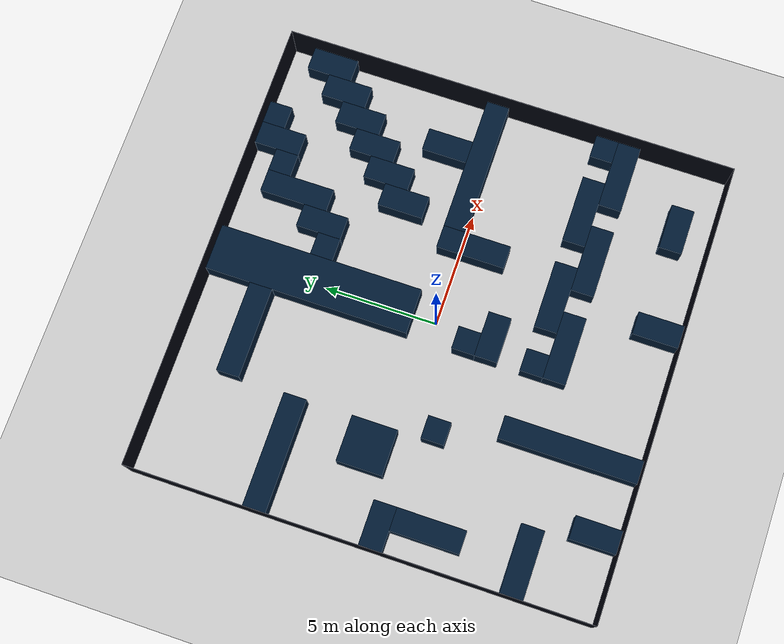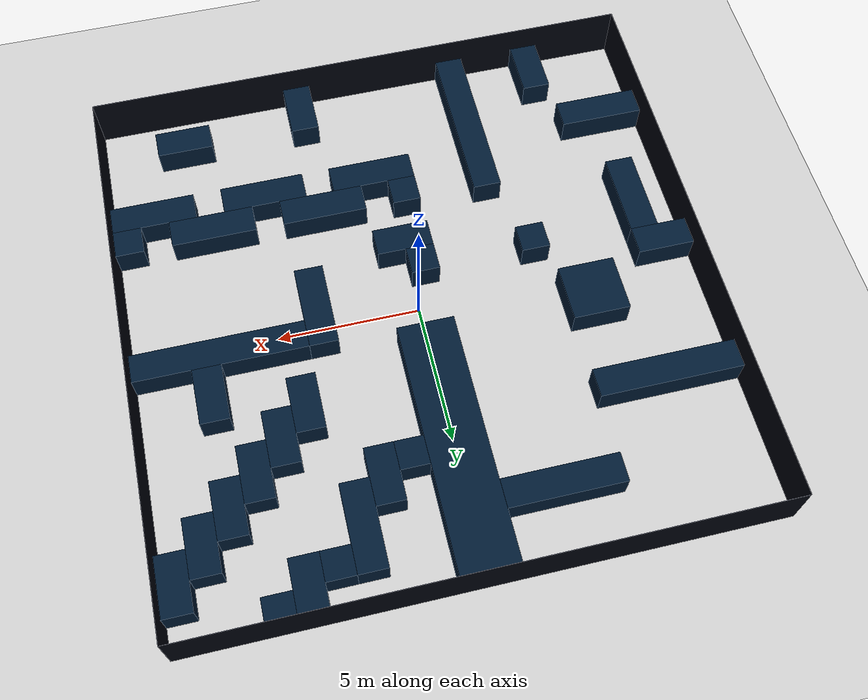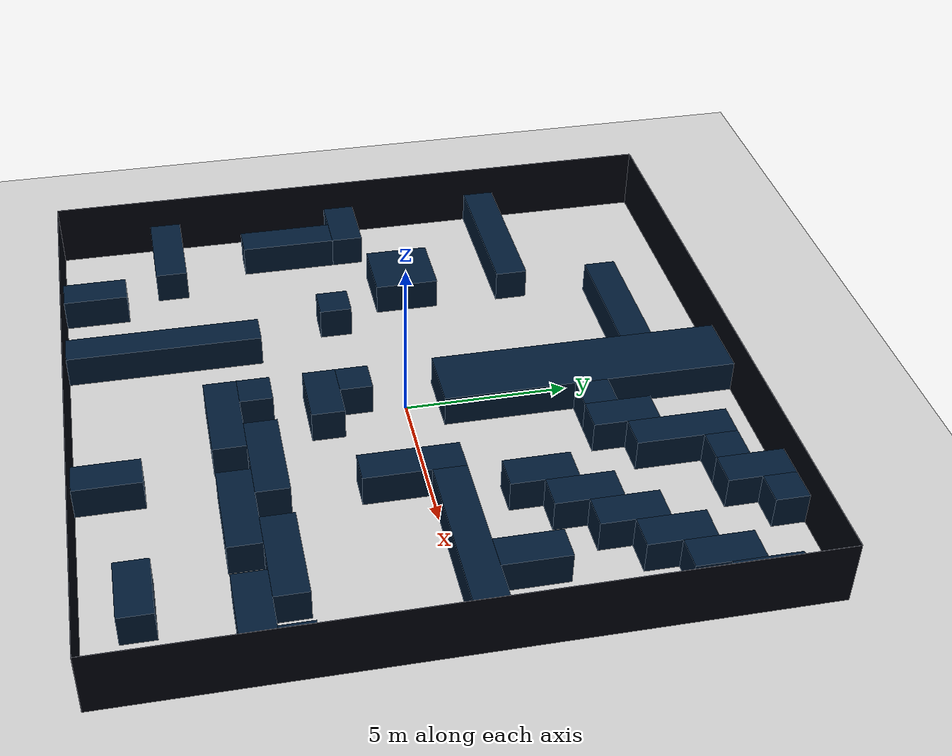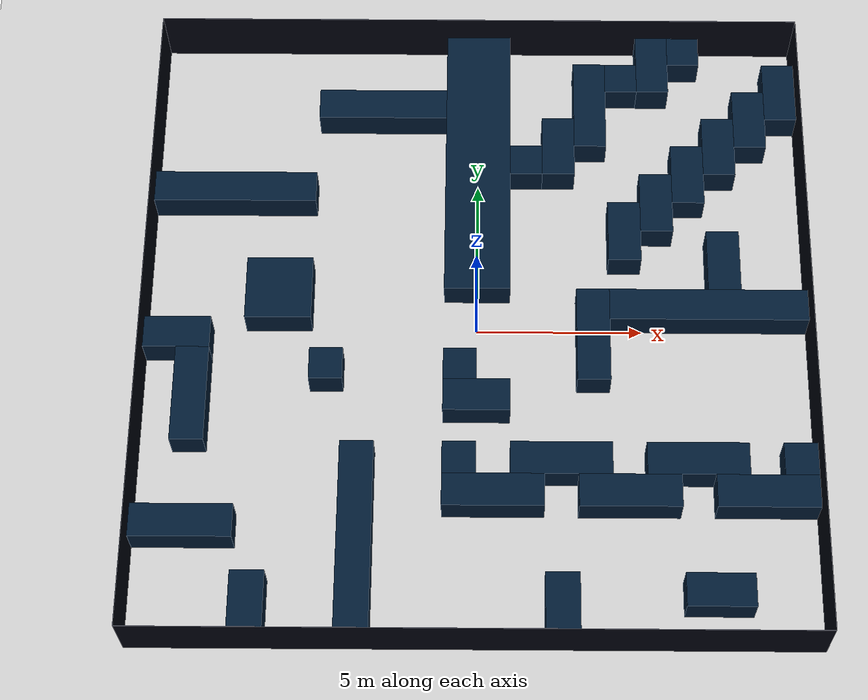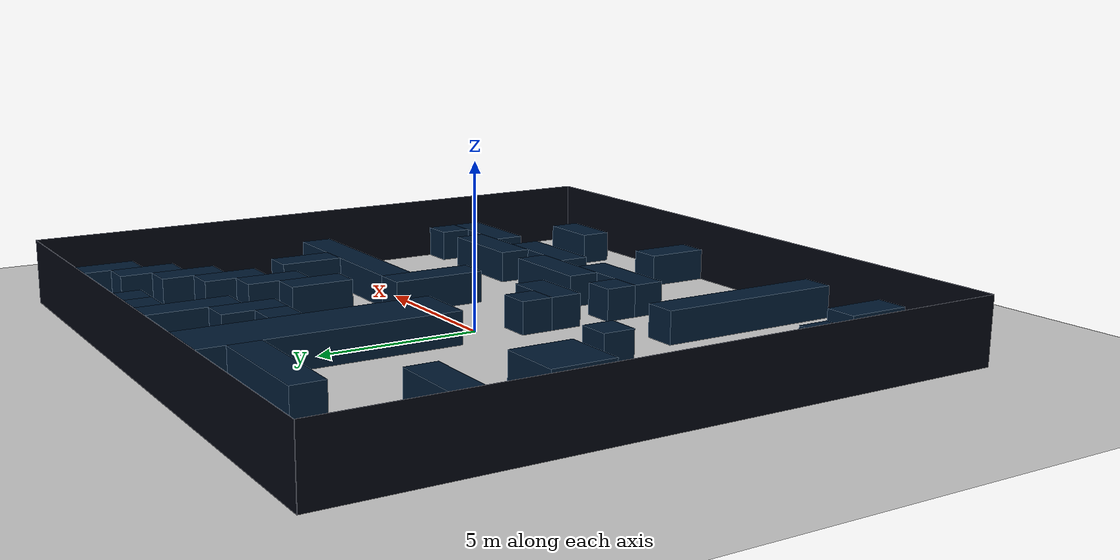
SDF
<sdf version="1.8">
 <world name="maze">
  <model name="ground_plane">
   <static>true</static>
   <link name="link">
    <collision name="collision"><geometry><plane><normal>0 0 1</normal></plane></geometry></collision>
    <visual name="visual">
     <geometry><plane><normal>0 0 1</normal><size>100 100</size></plane></geometry>
     <material>
      <ambient>0.8 0.8 0.8 1</ambient>
      <diffuse>0.8 0.8 0.8 1</diffuse>
      <specular>0.8 0.8 0.8 1</specular>
     </material>
    </visual>
   </link>
  </model>
  <model name="border">
   <pose>0 0 1 0 0 0</pose>
   <static>true</static>
   <link name="wall1">
    <pose>-10.005 0 0 0 0 0</pose>
    <static>true</static>
    <collision name="wall1_collision"><geometry><box><size>0.01 20 2</size></box></geometry></collision>
    <visual name="wall1_visual">
     <geometry><box><size>0.01 20 2</size></box></geometry>
     <material>
      <ambient>0.1 0.1 0.1 1</ambient>
      <diffuse>0 0.01 0.05 1</diffuse>
      <specular>0 0.01 0.05 1</specular>
     </material>
    </visual>
   </link>
   <link name="wall2">
    <pose>10.005 0 0 0 0 0</pose>
    <static>true</static>
    <collision name="wall2_collision"><geometry><box><size>0.01 20 2</size></box></geometry></collision>
    <visual name="wall2_visual">
     <geometry><box><size>0.01 20 2</size></box></geometry>
     <material>
      <ambient>0.1 0.1 0.1 1</ambient>
      <diffuse>0 0.01 0.05 1</diffuse>
      <specular>0 0.01 0.05 1</specular>
     </material>
    </visual>
   </link>
   <link name="wall3">
    <pose>0 10.005 0 0 0 0</pose>
    <static>true</static>
    <collision name="wall3_collision"><geometry><box><size>20 0.01 2</size></box></geometry></collision>
    <visual name="wall3_visual">
     <geometry><box><size>20 0.01 2</size></box></geometry>
     <material>
      <ambient>0.1 0.1 0.1 1</ambient>
      <diffuse>0 0.01 0.05 1</diffuse>
      <specular>0 0.01 0.05 1</specular>
     </material>
    </visual>
   </link>
   <link name="wall4">
    <pose>0 -10.005 0 0 0 0</pose>
    <static>true</static>
    <collision name="wall4_collision">
     <geometry><box><size>20 0.01 2</size></box></geometry>
     <material>
      <ambient>0.1 0.1 0.1 1</ambient>
      <diffuse>0 0.01 0.05 1</diffuse>
      <specular>0 0.01 0.05 1</specular>
     </material>
    </collision>
    <visual name="wall4_visual">
     <geometry><box><size>20 0.01 2</size></box></geometry>
     <material>
      <ambient>0.1 0.1 0.1 1</ambient>
      <diffuse>0 0.01 0.05 1</diffuse>
      <specular>0 0.01 0.05 1</specular>
     </material>
    </visual>
   </link>
  </model>
  <model name="obstacles">
   <pose>0 0 0.5 0 0 0</pose>
   <static>true</static>
   <link name="wall1">
    <pose>-6.5 -9 0 0 0 0</pose>
    <static>true</static>
    <collision name="wall1_collision"><geometry><box><size>1 2 1</size></box></geometry></collision>
    <visual name="wall1_visual">
     <geometry><box><size>1 2 1</size></box></geometry>
     <material>
      <ambient>0.1 0.1 0.1 1</ambient>
      <diffuse>0 0.1 0.2 1</diffuse>
      <specular>0 0.01 0.05 1</specular>
     </material>
    </visual>
   </link>
   <link name="wall2">
    <pose>-8.5 -6.5 0 0 0 0</pose>
    <static>true</static>
    <collision name="wall2_collision"><geometry><box><size>3 1 1</size></box></geometry></collision>
    <visual name="wall2_visual">
     <geometry><box><size>3 1 1</size></box></geometry>
     <material>
      <ambient>0.1 0.1 0.1 1</ambient>
      <diffuse>0 0.1 0.2 1</diffuse>
      <specular>0 0.01 0.05 1</specular>
     </material>
    </visual>
   </link>
   <link name="wall3">
    <pose>-3.5 -7 0 0 0 0</pose>
    <static>true</static>
    <collision name="wall3_collision"><geometry><box><size>1 6 1</size></box></geometry></collision>
    <visual name="wall3_visual">
     <geometry><box><size>1 6 1</size></box></geometry>
     <material>
      <ambient>0.1 0.1 0.1 1</ambient>
      <diffuse>0 0.1 0.2 1</diffuse>
      <specular>0 0.01 0.05 1</specular>
     </material>
    </visual>
   </link>
   <link name="wall4">
    <pose>2.5 -9 0 0 0 0</pose>
    <static>true</static>
    <collision name="wall4_collision"><geometry><box><size>1 2 1</size></box></geometry></collision>
    <visual name="wall4_visual">
     <geometry><box><size>1 2 1</size></box></geometry>
     <material>
      <ambient>0.1 0.1 0.1 1</ambient>
      <diffuse>0 0.1 0.2 1</diffuse>
      <specular>0 0.01 0.05 1</specular>
     </material>
    </visual>
   </link>
   <link name="wall5">
    <pose>7 -8.5 0 0 0 0</pose>
    <static>true</static>
    <collision name="wall5_collision"><geometry><box><size>2 1 1</size></box></geometry></collision>
    <visual name="wall5_visual">
     <geometry><box><size>2 1 1</size></box></geometry>
     <material>
      <ambient>0.1 0.1 0.1 1</ambient>
      <diffuse>0 0.1 0.2 1</diffuse>
      <specular>0 0.01 0.05 1</specular>
     </material>
    </visual>
   </link>
   <link name="wall6">
    <pose>-9 -0.5 0 0 0 0</pose>
    <static>true</static>
    <collision name="wall6_collision"><geometry><box><size>2 1 1</size></box></geometry></collision>
    <visual name="wall6_visual">
     <geometry><box><size>2 1 1</size></box></geometry>
     <material>
      <ambient>0.1 0.1 0.1 1</ambient>
      <diffuse>0 0.1 0.2 1</diffuse>
      <specular>0 0.01 0.05 1</specular>
     </material>
    </visual>
   </link>
   <link name="wall7">
    <pose>-8.5 -2.5 0 0 0 0</pose>
    <static>true</static>
    <collision name="wall7_collision"><geometry><box><size>1 3 1</size></box></geometry></collision>
    <visual name="wall7_visual">
     <geometry><box><size>1 3 1</size></box></geometry>
     <material>
      <ambient>0.1 0.1 0.1 1</ambient>
      <diffuse>0 0.1 0.2 1</diffuse>
      <specular>0 0.01 0.05 1</specular>
     </material>
    </visual>
   </link>
   <link name="wall8">
    <pose>-4.5 -1.5 0 0 0 0</pose>
    <static>true</static>
    <collision name="wall8_collision"><geometry><box><size>1 1 1</size></box></geometry></collision>
    <visual name="wall8_visual">
     <geometry><box><size>1 1 1</size></box></geometry>
     <material>
      <ambient>0.1 0.1 0.1 1</ambient>
      <diffuse>0 0.1 0.2 1</diffuse>
      <specular>0 0.01 0.05 1</specular>
     </material>
    </visual>
   </link>
   <link name="wall9">
    <pose>-6 1 0 0 0 0</pose>
    <static>true</static>
    <collision name="wall9_collision"><geometry><box><size>2 2 1</size></box></geometry></collision>
    <visual name="wall9_visual">
     <geometry><box><size>2 2 1</size></box></geometry>
     <material>
      <ambient>0.1 0.1 0.1 1</ambient>
      <diffuse>0 0.1 0.2 1</diffuse>
      <specular>0 0.01 0.05 1</specular>
     </material>
    </visual>
   </link>
   <link name="wall10">
    <pose>-7.5 4.5 0 0 0 0</pose>
    <static>true</static>
    <collision name="wall10_collision"><geometry><box><size>5 1 1</size></box></geometry></collision>
    <visual name="wall10_visual">
     <geometry><box><size>5 1 1</size></box></geometry>
     <material>
      <ambient>0.1 0.1 0.1 1</ambient>
      <diffuse>0 0.1 0.2 1</diffuse>
      <specular>0 0.01 0.05 1</specular>
     </material>
    </visual>
   </link>
   <link name="wall11">
    <pose>-3 7.5 0 0 0 0</pose>
    <static>true</static>
    <collision name="wall11_collision"><geometry><box><size>4 1 1</size></box></geometry></collision>
    <visual name="wall11_visual">
     <geometry><box><size>4 1 1</size></box></geometry>
     <material>
      <ambient>0.1 0.1 0.1 1</ambient>
      <diffuse>0 0.1 0.2 1</diffuse>
      <specular>0 0.01 0.05 1</specular>
     </material>
    </visual>
   </link>
   <link name="wall12">
    <pose>0 5.5 0 0 0 0</pose>
    <static>true</static>
    <collision name="wall12_collision"><geometry><box><size>2 9 1</size></box></geometry></collision>
    <visual name="wall12_visual">
     <geometry><box><size>2 9 1</size></box></geometry>
     <material>
      <ambient>0.1 0.1 0.1 1</ambient>
      <diffuse>0 0.1 0.2 1</diffuse>
      <specular>0 0.01 0.05 1</specular>
     </material>
    </visual>
   </link>
   <link name="wall13">
    <pose>0 -2.5 0 0 0 0</pose>
    <static>true</static>
    <collision name="wall13_collision"><geometry><box><size>2 1 1</size></box></geometry></collision>
    <visual name="wall13_visual">
     <geometry><box><size>2 1 1</size></box></geometry>
     <material>
      <ambient>0.1 0.1 0.1 1</ambient>
      <diffuse>0 0.1 0.2 1</diffuse>
      <specular>0 0.01 0.05 1</specular>
     </material>
    </visual>
   </link>
   <link name="wall14">
    <pose>-0.5 -1.5 0 0 0 0</pose>
    <static>true</static>
    <collision name="wall14_collision"><geometry><box><size>1 1 1</size></box></geometry></collision>
    <visual name="wall14_visual">
     <geometry><box><size>1 1 1</size></box></geometry>
     <material>
      <ambient>0.1 0.1 0.1 1</ambient>
      <diffuse>0 0.1 0.2 1</diffuse>
      <specular>0 0.01 0.05 1</specular>
     </material>
    </visual>
   </link>
   <link name="wall15">
    <pose>-0.5 -4.5 0 0 0 0</pose>
    <static>true</static>
    <collision name="wall15_collision"><geometry><box><size>1 1 1</size></box></geometry></collision>
    <visual name="wall15_visual">
     <geometry><box><size>1 1 1</size></box></geometry>
     <material>
      <ambient>0.1 0.1 0.1 1</ambient>
      <diffuse>0 0.1 0.2 1</diffuse>
      <specular>0 0.01 0.05 1</specular>
     </material>
    </visual>
   </link>
   <link name="wall16">
    <pose>0.5 -5.5 0 0 0 0</pose>
    <static>true</static>
    <collision name="wall16_collision"><geometry><box><size>3 1 1</size></box></geometry></collision>
    <visual name="wall16_visual">
     <geometry><box><size>3 1 1</size></box></geometry>
     <material>
      <ambient>0.1 0.1 0.1 1</ambient>
      <diffuse>0 0.1 0.2 1</diffuse>
      <specular>0 0.01 0.05 1</specular>
     </material>
    </visual>
   </link>
   <link name="wall17">
    <pose>2.5 -4.5 0 0 0 0</pose>
    <static>true</static>
    <collision name="wall17_collision"><geometry><box><size>3 1 1</size></box></geometry></collision>
    <visual name="wall17_visual">
     <geometry><box><size>3 1 1</size></box></geometry>
     <material>
      <ambient>0.1 0.1 0.1 1</ambient>
      <diffuse>0 0.1 0.2 1</diffuse>
      <specular>0 0.01 0.05 1</specular>
     </material>
    </visual>
   </link>
   <link name="wall18">
    <pose>4.5 -5.5 0 0 0 0</pose>
    <static>true</static>
    <collision name="wall18_collision"><geometry><box><size>3 1 1</size></box></geometry></collision>
    <visual name="wall18_visual">
     <geometry><box><size>3 1 1</size></box></geometry>
     <material>
      <ambient>0.1 0.1 0.1 1</ambient>
      <diffuse>0 0.1 0.2 1</diffuse>
      <specular>0 0.01 0.05 1</specular>
     </material>
    </visual>
   </link>
   <link name="wall19">
    <pose>6.5 -4.5 0 0 0 0</pose>
    <static>true</static>
    <collision name="wall19_collision"><geometry><box><size>3 1 1</size></box></geometry></collision>
    <visual name="wall19_visual">
     <geometry><box><size>3 1 1</size></box></geometry>
     <material>
      <ambient>0.1 0.1 0.1 1</ambient>
      <diffuse>0 0.1 0.2 1</diffuse>
      <specular>0 0.01 0.05 1</specular>
     </material>
    </visual>
   </link>
   <link name="wall20">
    <pose>8.5 -5.5 0 0 0 0</pose>
    <static>true</static>
    <collision name="wall20_collision"><geometry><box><size>3 1 1</size></box></geometry></collision>
    <visual name="wall20_visual">
     <geometry><box><size>3 1 1</size></box></geometry>
     <material>
      <ambient>0.1 0.1 0.1 1</ambient>
      <diffuse>0 0.1 0.2 1</diffuse>
      <specular>0 0.01 0.05 1</specular>
     </material>
    </visual>
   </link>
   <link name="wall21">
    <pose>9.5 -4.5 0 0 0 0</pose>
    <static>true</static>
    <collision name="wall21_collision"><geometry><box><size>1 1 1</size></box></geometry></collision>
    <visual name="wall21_visual">
     <geometry><box><size>1 1 1</size></box></geometry>
     <material>
      <ambient>0.1 0.1 0.1 1</ambient>
      <diffuse>0 0.1 0.2 1</diffuse>
      <specular>0 0.01 0.05 1</specular>
     </material>
    </visual>
   </link>
   <link name="wall22">
    <pose>3.5 -0.5 0 0 0 0</pose>
    <static>true</static>
    <collision name="wall22_collision"><geometry><box><size>1 3 1</size></box></geometry></collision>
    <visual name="wall22_visual">
     <geometry><box><size>1 3 1</size></box></geometry>
     <material>
      <ambient>0.1 0.1 0.1 1</ambient>
      <diffuse>0 0.1 0.2 1</diffuse>
      <specular>0 0.01 0.05 1</specular>
     </material>
    </visual>
   </link>
   <link name="wall23">
    <pose>7 0.5 0 0 0 0</pose>
    <static>true</static>
    <collision name="wall23_collision"><geometry><box><size>6 1 1</size></box></geometry></collision>
    <visual name="wall23_visual">
     <geometry><box><size>6 1 1</size></box></geometry>
     <material>
      <ambient>0.1 0.1 0.1 1</ambient>
      <diffuse>0 0.1 0.2 1</diffuse>
      <specular>0 0.01 0.05 1</specular>
     </material>
    </visual>
   </link>
   <link name="wall24">
    <pose>7.5 2 0 0 0 0</pose>
    <static>true</static>
    <collision name="wall24_collision"><geometry><box><size>1 2 1</size></box></geometry></collision>
    <visual name="wall24_visual">
     <geometry><box><size>1 2 1</size></box></geometry>
     <material>
      <ambient>0.1 0.1 0.1 1</ambient>
      <diffuse>0 0.1 0.2 1</diffuse>
      <specular>0 0.01 0.05 1</specular>
     </material>
    </visual>
   </link>
   <link name="wall25">
    <pose>1.5 5.5 0 0 0 0</pose>
    <static>true</static>
    <collision name="wall25_collision"><geometry><box><size>1 1 1</size></box></geometry></collision>
    <visual name="wall25_visual">
     <geometry><box><size>1 1 1</size></box></geometry>
     <material>
      <ambient>0.1 0.1 0.1 1</ambient>
      <diffuse>0 0.1 0.2 1</diffuse>
      <specular>0 0.01 0.05 1</specular>
     </material>
    </visual>
   </link>
   <link name="wall26">
    <pose>2.5 6 0 0 0 0</pose>
    <static>true</static>
    <collision name="wall26_collision"><geometry><box><size>1 2 1</size></box></geometry></collision>
    <visual name="wall26_visual">
     <geometry><box><size>1 2 1</size></box></geometry>
     <material>
      <ambient>0.1 0.1 0.1 1</ambient>
      <diffuse>0 0.1 0.2 1</diffuse>
      <specular>0 0.01 0.05 1</specular>
     </material>
    </visual>
   </link>
   <link name="wall27">
    <pose>3.5 7.5 0 0 0 0</pose>
    <static>true</static>
    <collision name="wall27_collision"><geometry><box><size>1 3 1</size></box></geometry></collision>
    <visual name="wall27_visual">
     <geometry><box><size>1 3 1</size></box></geometry>
     <material>
      <ambient>0.1 0.1 0.1 1</ambient>
      <diffuse>0 0.1 0.2 1</diffuse>
      <specular>0 0.01 0.05 1</specular>
     </material>
    </visual>
   </link>
   <link name="wall28">
    <pose>4.5 8.5 0 0 0 0</pose>
    <static>true</static>
    <collision name="wall28_collision"><geometry><box><size>1 1 1</size></box></geometry></collision>
    <visual name="wall28_visual">
     <geometry><box><size>1 1 1</size></box></geometry>
     <material>
      <ambient>0.1 0.1 0.1 1</ambient>
      <diffuse>0 0.1 0.2 1</diffuse>
      <specular>0 0.01 0.05 1</specular>
     </material>
    </visual>
   </link>
   <link name="wall29">
    <pose>5.5 9 0 0 0 0</pose>
    <static>true</static>
    <collision name="wall29_collision"><geometry><box><size>1 2 1</size></box></geometry></collision>
    <visual name="wall29_visual">
     <geometry><box><size>1 2 1</size></box></geometry>
     <material>
      <ambient>0.1 0.1 0.1 1</ambient>
      <diffuse>0 0.1 0.2 1</diffuse>
      <specular>0 0.01 0.05 1</specular>
     </material>
    </visual>
   </link>
   <link name="wall30">
    <pose>6.5 9.5 0 0 0 0</pose>
    <static>true</static>
    <collision name="wall30_collision"><geometry><box><size>1 1 1</size></box></geometry></collision>
    <visual name="wall30_visual">
     <geometry><box><size>1 1 1</size></box></geometry>
     <material>
      <ambient>0.1 0.1 0.1 1</ambient>
      <diffuse>0 0.1 0.2 1</diffuse>
      <specular>0 0.01 0.05 1</specular>
     </material>
    </visual>
   </link>
   <link name="wall31">
    <pose>4.5 3 0 0 0 0</pose>
    <static>true</static>
    <collision name="wall31_collision"><geometry><box><size>1 2 1</size></box></geometry></collision>
    <visual name="wall31_visual">
     <geometry><box><size>1 2 1</size></box></geometry>
     <material>
      <ambient>0.1 0.1 0.1 1</ambient>
      <diffuse>0 0.1 0.2 1</diffuse>
      <specular>0 0.01 0.05 1</specular>
     </material>
    </visual>
   </link>
   <link name="wall32">
    <pose>5.5 4 0 0 0 0</pose>
    <static>true</static>
    <collision name="wall32_collision"><geometry><box><size>1 2 1</size></box></geometry></collision>
    <visual name="wall32_visual">
     <geometry><box><size>1 2 1</size></box></geometry>
     <material>
      <ambient>0.1 0.1 0.1 1</ambient>
      <diffuse>0 0.1 0.2 1</diffuse>
      <specular>0 0.01 0.05 1</specular>
     </material>
    </visual>
   </link>
   <link name="wall33">
    <pose>6.5 5 0 0 0 0</pose>
    <static>true</static>
    <collision name="wall33_collision"><geometry><box><size>1 2 1</size></box></geometry></collision>
    <visual name="wall33_visual">
     <geometry><box><size>1 2 1</size></box></geometry>
     <material>
      <ambient>0.1 0.1 0.1 1</ambient>
      <diffuse>0 0.1 0.2 1</diffuse>
      <specular>0 0.01 0.05 1</specular>
     </material>
    </visual>
   </link>
   <link name="wall34">
    <pose>7.5 6 0 0 0 0</pose>
    <static>true</static>
    <collision name="wall34_collision"><geometry><box><size>1 2 1</size></box></geometry></collision>
    <visual name="wall34_visual">
     <geometry><box><size>1 2 1</size></box></geometry>
     <material>
      <ambient>0.1 0.1 0.1 1</ambient>
      <diffuse>0 0.1 0.2 1</diffuse>
      <specular>0 0.01 0.05 1</specular>
     </material>
    </visual>
   </link>
   <link name="wall35">
    <pose>8.5 7 0 0 0 0</pose>
    <static>true</static>
    <collision name="wall35_collision"><geometry><box><size>1 2 1</size></box></geometry></collision>
    <visual name="wall35_visual">
     <geometry><box><size>1 2 1</size></box></geometry>
     <material>
      <ambient>0.1 0.1 0.1 1</ambient>
      <diffuse>0 0.1 0.2 1</diffuse>
      <specular>0 0.01 0.05 1</specular>
     </material>
    </visual>
   </link>
   <link name="wall36">
    <pose>9.5 8 0 0 0 0</pose>
    <static>true</static>
    <collision name="wall36_collision"><geometry><box><size>1 2 1</size></box></geometry></collision>
    <visual name="wall36_visual">
     <geometry><box><size>1 2 1</size></box></geometry>
     <material>
      <ambient>0.1 0.1 0.1 1</ambient>
      <diffuse>0 0.1 0.2 1</diffuse>
      <specular>0 0.01 0.05 1</specular>
     </material>
    </visual>
   </link>
  </model>
 </world>
</sdf>
